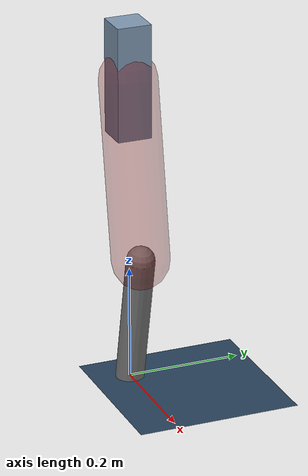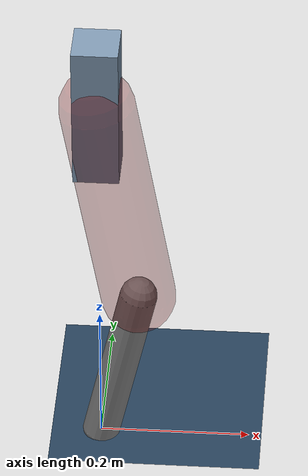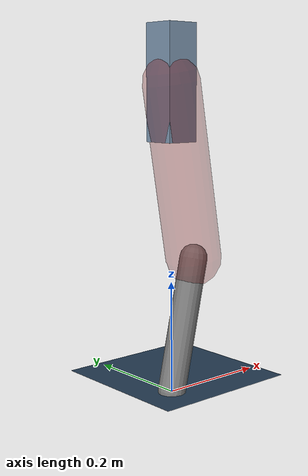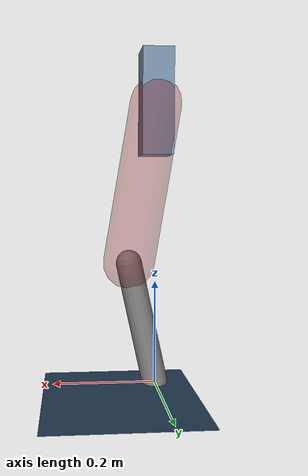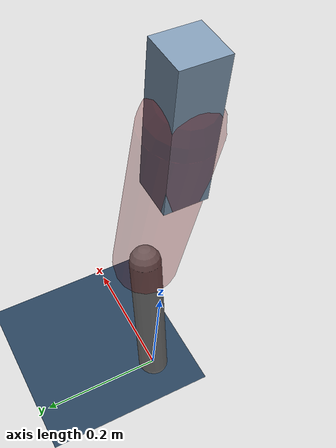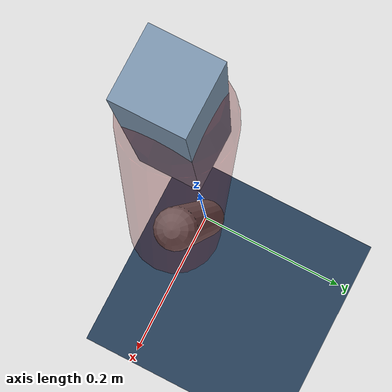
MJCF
<mujoco model="Hopper2D">
	<compiler inertiafromgeom="true" angle="radian" />
	<option timestep="0.001" integrator="implicit" cone="elliptic" solver="Newton" tolerance="1e-10" />

	<default>
		<geom contype="1" conaffinity="1" condim="3" friction="2 0.005 0.0001" solref="0.005 1" />
		<joint limited="true" damping="0.1" />
	</default>

	<asset>
		<texture name="skybox" type="skybox" builtin="gradient" rgb1=".4 .6 .8" rgb2="0 0 0" width="800" height="800" />
		<texture name="grid" type="2d" builtin="checker" rgb1=".1 .2 .3" rgb2=".2 .3 .4" width="300" height="300" mark="edge" markrgb=".2 .3 .4" />
		<material name="ground" texture="grid" texrepeat="1 1" texuniform="true" reflectance="0.1" />
		<material name="leg" rgba="0.5 0.6 0.7 1" />
	</asset>

	<worldbody>

		<geom name="floor" type="plane" size="5 5 0.25" material="ground" />

		<light directional="false" diffuse="0.8 0.8 0.8" specular="0.3 0.3 0.3" pos="0 0 2" dir="0 0 -1" />
		<light mode="targetbodycom" target="base" directional="false" diffuse="0.8 0.8 0.8" specular="0.3 0.3 0.3" pos="0 0 2" dir="0 0 -1" />

		<camera name="fixed" pos="0 -2 1" xyaxes="1 0 0 0 0 1" />
		<camera name="tracking" mode="trackcom" pos="0 -3 1" />

		<body name="root" pos="0 0 0.5454216555800908">
			<joint name="slide_x" type="slide" axis="1 0 0" range="-100 100" />
			<joint name="slide_z" type="slide" axis="0 0 1" range="0 10" />

			<body name="base" pos="0 0 0">
				<geom name="torso" type="box" size="0.03 0.03 0.1" mass="3.712" material="leg" />

				<body name="link1" pos="0 0 0" euler="0 1.403749120674056 0">
					<joint type="hinge" axis="0 -1 0" pos="0 0 0" name="hinge1" limited="true" range="-3.14 3.14" stiffness="0" damping="0.1" />
					<geom name="thigh" type="capsule" fromto="0 0 0 0.31287729624597804 0 0" size="0.05" rgba="0.5 0 0 0.3" mass="1.0237564294887385" />

					<body name="link2" pos="0.31287729624597804 0 0" euler="0 0.38321348668624705 0">
						<joint type="hinge" axis="0 -1 0" pos="0 0 0" name="hinge2" limited="true" range="-3.14 3.14" stiffness="0" damping="0.1" />
						<geom name="shank" type="capsule" fromto="0 0 0 0.24254435933411272 0 0" size="0.025" mass="0.4363354874672902" />

					</body>
				</body>
			</body>
		</body>
	</worldbody>

	<actuator>
		<motor name="torque1" joint="hinge1" ctrlrange="-171.98947796913885 171.98947796913885" ctrllimited="true" gear="1" />
		<motor name="torque2" joint="hinge2" ctrlrange="-113.38507436969881 113.38507436969881" ctrllimited="true" gear="1" />
	</actuator>
</mujoco>
